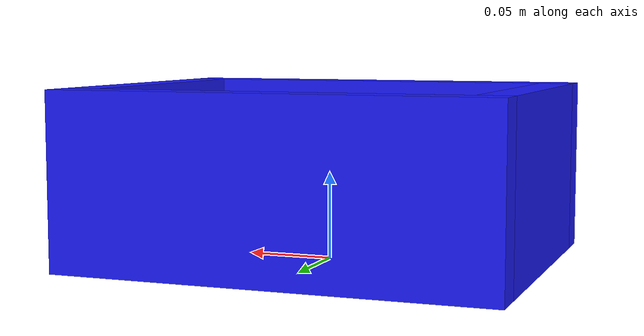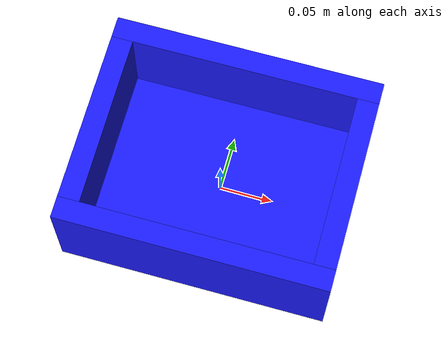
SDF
<?xml version="1.0" ?>
<sdf version="1.4">
	<model name="box">
		<static> true </static>
		<link name="main">
			<kinematic> true </kinematic>
			<inertial>
				<mass> 10 </mass>
			</inertial>
<!-- bottom -->
			<collision name="bottom_collision">
				<pose> 0 0 0.01 0 0 0 </pose>
				<geometry>
					<box>
						<size> 0.210 0.160 0.02 </size>
					</box>
				</geometry>
				<surface>
					<bounce>
						<restitution_coefficient> 0 </restitution_coefficient>
					</bounce>
					<friction>
						<ode>
							<mu> 0.9 </mu>
							<mu2> 0.9 </mu2>
						</ode>
					</friction>
				</surface>
			</collision>

			<visual name="bottom_visual">
				<pose> 0 0 0.01 0 0 0 </pose>
				<material>
					<ambient> 0.1 0.1 0.4 1.0 </ambient>
					<diffuse> 0.1 0.1 1.0 1.0 </diffuse>
				</material>
				<geometry>
					<box>
						<size> 0.210 0.160 0.02 </size>
					</box>
				</geometry>
			</visual>
<!-- front -->
			<collision name="front_collision">
				<pose> 0 0.09 0.05 0 0 0 </pose>
				<geometry>
					<box>
						<size> 0.250 0.02 0.1 </size>
					</box>
				</geometry>
				<surface>
					<bounce>
						<restitution_coefficient> 0 </restitution_coefficient>
					</bounce>
					<friction>
						<ode>
							<mu> 0.9 </mu>
							<mu2> 0.9 </mu2>
						</ode>
					</friction>
				</surface>
			</collision>

			<visual name="front_visual">
				<pose> 0 0.09 0.05 0 0 0 </pose>
				<material>
					<ambient> 0.1 0.1 0.4 1.0 </ambient>
					<diffuse> 0.1 0.1 1.0 1.0 </diffuse>
				</material>
				<geometry>
					<box>
						<size> 0.250 0.02 0.1 </size>
					</box>
				</geometry>
			</visual>
<!-- back -->
			<collision name="back_collision">
				<pose> 0 -0.09 0.05 0 0 0 </pose>
				<geometry>
					<box>
						<size> 0.250 0.02 0.1 </size>
					</box>
				</geometry>
				<surface>
					<bounce>
						<restitution_coefficient> 0 </restitution_coefficient>
					</bounce>
					<friction>
						<ode>
							<mu> 0.9 </mu>
							<mu2> 0.9 </mu2>
						</ode>
					</friction>
				</surface>
			</collision>

			<visual name="back_visual">
				<pose> 0 -0.09 0.05 0 0 0 </pose>
				<material>
					<ambient> 0.1 0.1 0.4 1.0 </ambient>
					<diffuse> 0.1 0.1 1.0 1.0 </diffuse>
				</material>
				<geometry>
					<box>
						<size> 0.250 0.02 0.1 </size>
					</box>
				</geometry>
			</visual>
<!-- left -->
			<collision name="left_collision">
				<pose> -0.115 0 0.05 0 0 0 </pose>
				<geometry>
					<box>
						<size> 0.02 0.160 0.1 </size>
					</box>
				</geometry>
				<surface>
					<bounce>
						<restitution_coefficient> 0 </restitution_coefficient>
					</bounce>
					<friction>
						<ode>
							<mu> 0.9 </mu>
							<mu2> 0.9 </mu2>
						</ode>
					</friction>
				</surface>
			</collision>

			<visual name="left_visual">
				<pose> -0.115 0 0.05 0 0 0 </pose>
				<material>
					<ambient> 0.1 0.1 0.4 1.0 </ambient>
					<diffuse> 0.1 0.1 1.0 1.0 </diffuse>
				</material>
				<geometry>
					<box>
						<size> 0.02 0.160 0.1 </size>
					</box>
				</geometry>
			</visual>
<!-- right -->
			<collision name="right_collision">
				<pose> 0.115 0 0.05 0 0 0 </pose>
				<geometry>
					<box>
						<size> 0.02 0.160 0.1 </size>
					</box>
				</geometry>
				<surface>
					<bounce>
						<restitution_coefficient> 0 </restitution_coefficient>
					</bounce>
					<friction>
						<ode>
							<mu> 0.9 </mu>
							<mu2> 0.9 </mu2>
						</ode>
					</friction>
				</surface>
			</collision>

			<visual name="right_visual">
				<pose> 0.115 0 0.05 0 0 0 </pose>
				<material>
					<ambient> 0.1 0.1 0.4 1.0 </ambient>
					<diffuse> 0.1 0.1 1.0 1.0 </diffuse>
				</material>
				<geometry>
					<box>
						<size> 0.02 0.160 0.1 </size>
					</box>
				</geometry>
			</visual>
		</link>
	</model>
</sdf>
